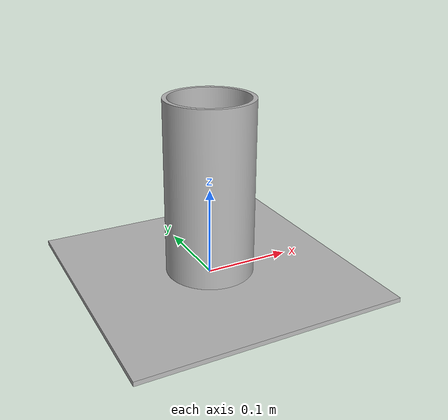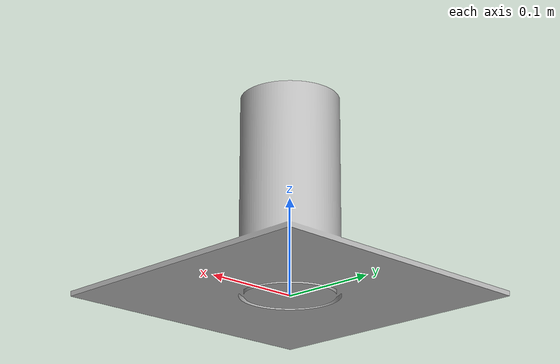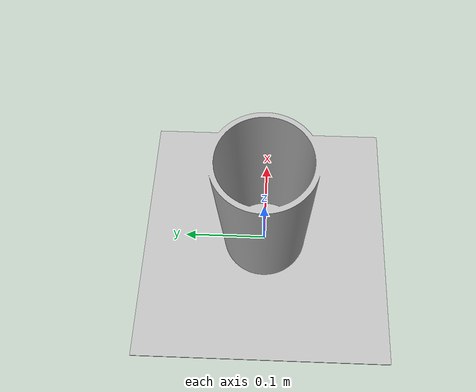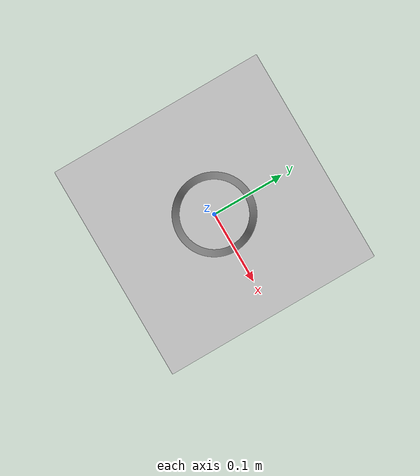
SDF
<?xml version="1.0" ?>
<sdf version="1.6">
  <model name="cylinder_200">
    <static>true</static>
    <link name="link">
      <collision name="collision">
        <geometry>
          <mesh>
            <scale>0.001 0.001 0.001</scale>
            <uri>model://cylinder_200/meshes/circle_200.stl</uri>
          </mesh>
        </geometry>
      </collision>
      <visual name="visual">
        <geometry>
          <mesh>
            <scale>0.001 0.001 0.001</scale>
            <uri>model://cylinder_200/meshes/circle_200.stl</uri>
          </mesh>
        </geometry>
      </visual>
    </link>
  </model>
</sdf>
